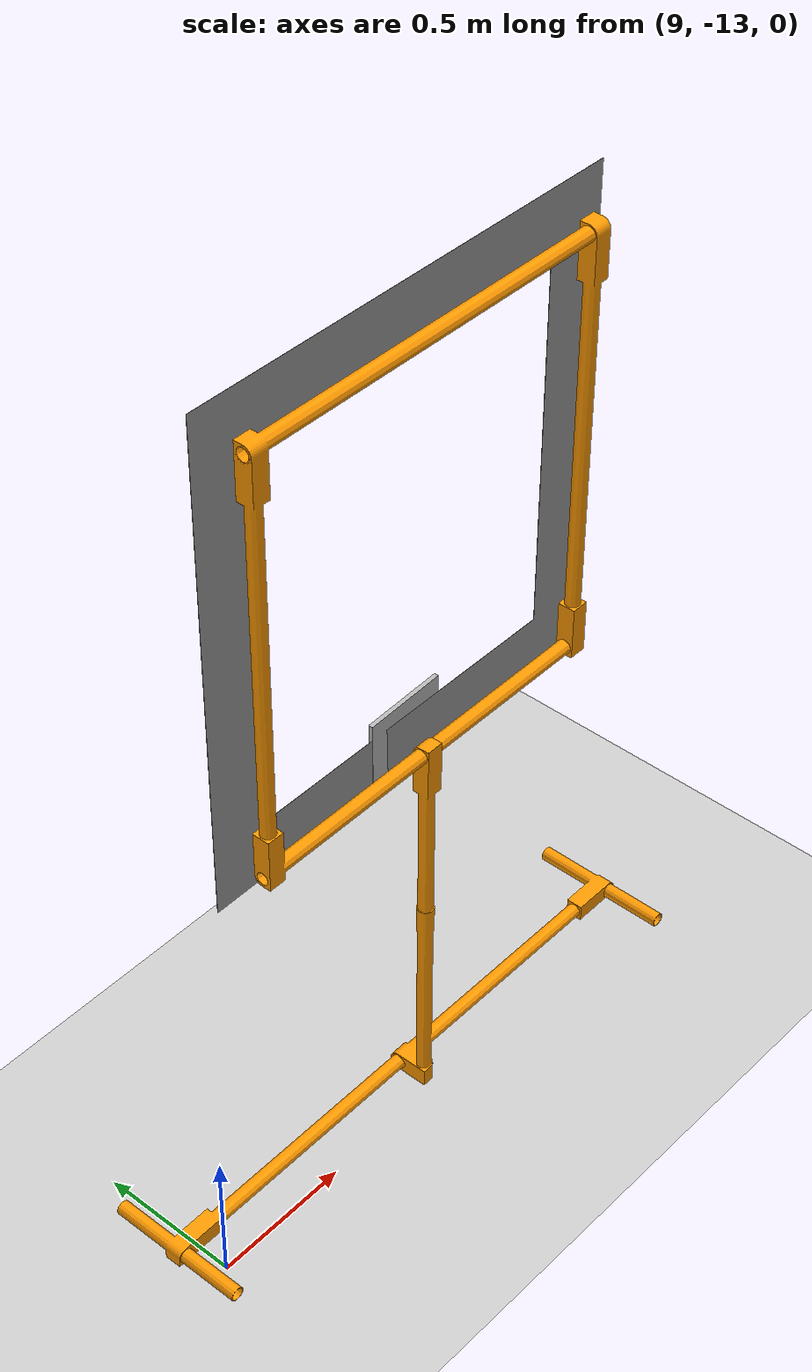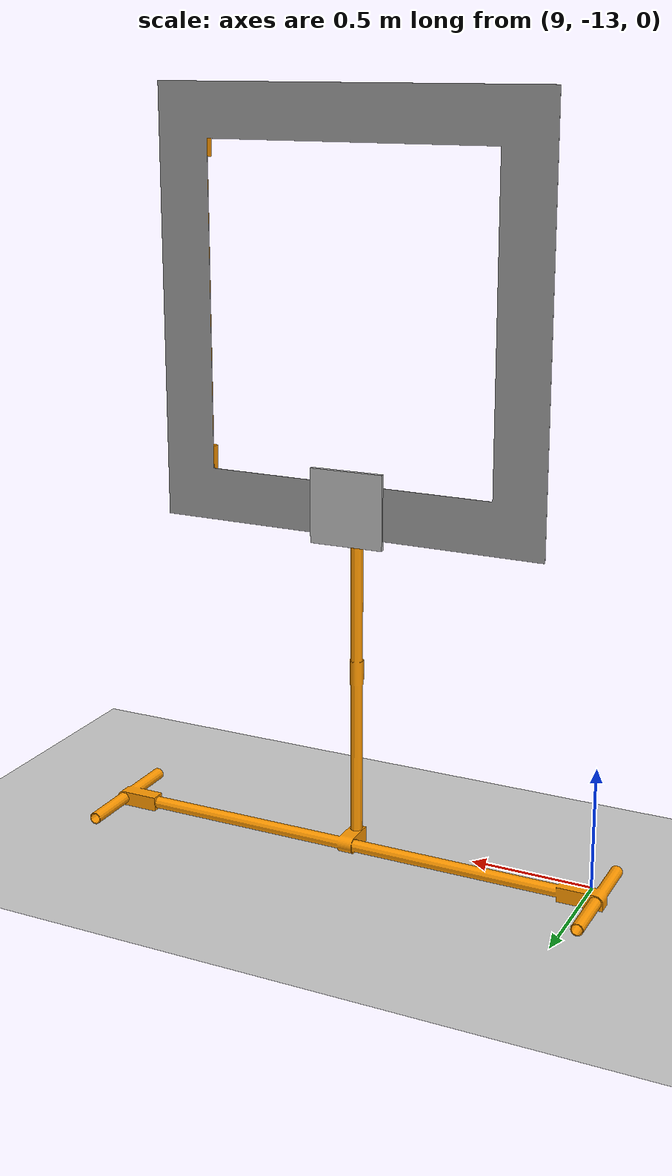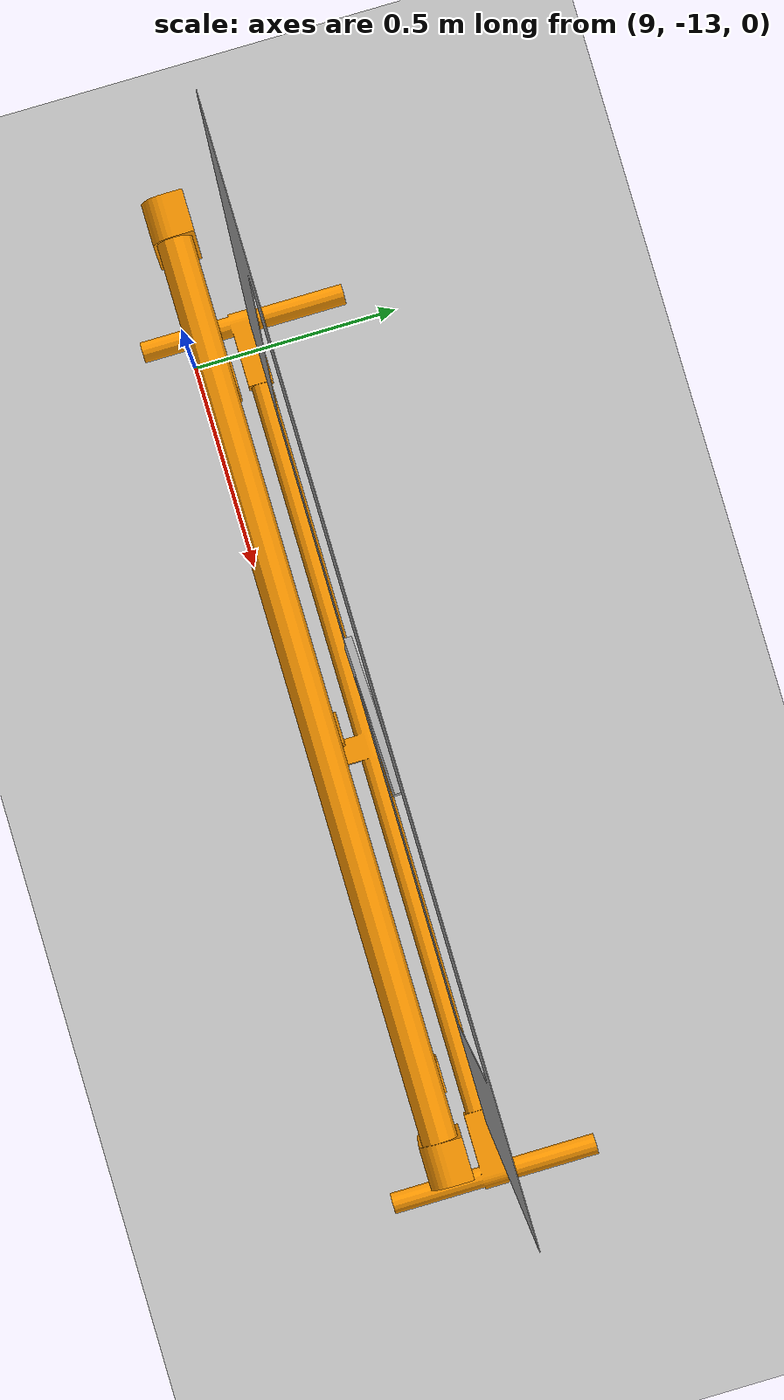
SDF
<sdf version="1.7">
 <world name="default">
  <model name="ground_plane">
   <static>1</static>
   <link name="link">
    <collision name="collision">
     <geometry><plane><normal>0 0 1</normal><size>100 100</size></plane></geometry>
     <surface>
      <contact><collide_bitmask>65535</collide_bitmask></contact>
      <friction><ode><mu>100</mu><mu2>50</mu2></ode></friction>
     </surface>
    </collision>
    <visual name="visual">
     <cast_shadows>0</cast_shadows>
     <geometry><plane><normal>0 0 1</normal><size>100 100</size></plane></geometry>
     <material>
      <script><uri>file://media/materials/scripts/gazebo.material</uri><name>Gazebo/Grey</name></script>
     </material>
    </visual>
   </link>
  </model>
  <model name="Aruco_gate_2">
   <link name="aruco">
    <pose>0.135 0 1.45017 0 -0 1.6</pose>
    <collision name="collision"><geometry><box><size>0.3 0.015 0.3</size></box></geometry></collision>
    <visual name="visual">
     <pose>0 0 0 0 1.57 0</pose>
     <geometry><box><size>0.3 0.015 0.3</size></box></geometry>
     <material>
      <script>
       <uri>model://aruco/materials/scripts</uri>
       <uri>model://aruco/materials/textures</uri>
       <name>aruco_2/Diffuse</name>
      </script>
     </material>
    </visual>
   </link>
   <link name="link_0">
    <pose>-0.126667 1.11221 0.000173 1.57 -0 0</pose>
    <inertial>
     <mass>1</mass>
     <inertia>
      <ixx>0.166667</ixx>
      <ixy>0</ixy>
      <ixz>0</ixz>
      <iyy>0.166667</iyy>
      <iyz>0</iyz>
      <izz>0.166667</izz>
     </inertia>
    </inertial>
    <visual name="visual">
     <geometry><mesh><uri>model://aruco_gate_1/meshes/base.stl</uri><scale>1 1 1</scale></mesh></geometry>
     <material>
      <lighting>1</lighting>
      <script><uri>file://media/materials/scripts/gazebo.material</uri><name>Gazebo/Grey</name></script>
      <ambient>1 0.6 0 1</ambient>
      <diffuse>1 0.6 0 1</diffuse>
      <specular>0.01 0.01 0.01 1</specular>
      <emissive>0 0 0 1</emissive>
      <shader type="vertex"><normal_map>__default__</normal_map></shader>
     </material>
    </visual>
    <collision name="collision">
     <geometry><mesh><uri>model://aruco_gate_1/meshes/base.stl</uri></mesh></geometry>
     <surface>
      <friction>
       <ode><mu>1</mu><mu2>1</mu2><fdir1>0 0 0</fdir1><slip1>0</slip1><slip2>0</slip2></ode>
       <torsional>
        <coefficient>1</coefficient>
        <patch_radius>0</patch_radius>
        <surface_radius>0</surface_radius>
        <use_patch_radius>1</use_patch_radius>
        <ode><slip>0</slip></ode>
       </torsional>
      </friction>
      <bounce><restitution_coefficient>0</restitution_coefficient><threshold>1e+06</threshold></bounce>
      <contact>
       <collide_without_contact>0</collide_without_contact>
       <collide_without_contact_bitmask>1</collide_without_contact_bitmask>
       <collide_bitmask>1</collide_bitmask>
       <ode>
        <soft_cfm>0</soft_cfm>
        <soft_erp>0.2</soft_erp>
        <kp>1e+13</kp>
        <kd>1</kd>
        <max_vel>0.01</max_vel>
        <min_depth>0</min_depth>
       </ode>
       <bullet>
        <split_impulse>1</split_impulse>
        <split_impulse_penetration_threshold>-0.01</split_impulse_penetration_threshold>
        <soft_cfm>0</soft_cfm>
        <soft_erp>0.2</soft_erp>
        <kp>1e+13</kp>
        <kd>1</kd>
       </bullet>
      </contact>
     </surface>
    </collision>
   </link>
   <link name="link_1">
    <pose>0.003333 -0.7 1.40017 0 -0 0</pose>
    <inertial>
     <mass>1</mass>
     <inertia>
      <ixx>0.166667</ixx>
      <ixy>0</ixy>
      <ixz>0</ixz>
      <iyy>0.166667</iyy>
      <iyz>0</iyz>
      <izz>0.166667</izz>
     </inertia>
    </inertial>
    <visual name="visual">
     <geometry><mesh><uri>model://aruco_gate_1/meshes/hoop.stl</uri><scale>1 1 1</scale></mesh></geometry>
     <material>
      <lighting>1</lighting>
      <script><uri>file://media/materials/scripts/gazebo.material</uri><name>Gazebo/Grey</name></script>
      <ambient>1 0.6 0 1</ambient>
      <diffuse>1 0.6 0 1</diffuse>
      <specular>0.01 0.01 0.01 1</specular>
      <emissive>0 0 0 1</emissive>
      <shader type="vertex"><normal_map>__default__</normal_map></shader>
     </material>
    </visual>
    <collision name="collision">
     <geometry><mesh><uri>model://aruco_gate_1/meshes/hoop.stl</uri></mesh></geometry>
     <surface>
      <friction>
       <ode><mu>1</mu><mu2>1</mu2><fdir1>0 0 0</fdir1><slip1>0</slip1><slip2>0</slip2></ode>
       <torsional>
        <coefficient>1</coefficient>
        <patch_radius>0</patch_radius>
        <surface_radius>0</surface_radius>
        <use_patch_radius>1</use_patch_radius>
        <ode><slip>0</slip></ode>
       </torsional>
      </friction>
      <bounce><restitution_coefficient>0</restitution_coefficient><threshold>1e+06</threshold></bounce>
      <contact>
       <collide_without_contact>0</collide_without_contact>
       <collide_without_contact_bitmask>1</collide_without_contact_bitmask>
       <collide_bitmask>1</collide_bitmask>
       <ode>
        <soft_cfm>0</soft_cfm>
        <soft_erp>0.2</soft_erp>
        <kp>1e+13</kp>
        <kd>1</kd>
        <max_vel>0.01</max_vel>
        <min_depth>0</min_depth>
       </ode>
       <bullet>
        <split_impulse>1</split_impulse>
        <split_impulse_penetration_threshold>-0.01</split_impulse_penetration_threshold>
        <soft_cfm>0</soft_cfm>
        <soft_erp>0.2</soft_erp>
        <kp>1e+13</kp>
        <kd>1</kd>
       </bullet>
      </contact>
     </surface>
    </collision>
   </link>
   <link name="link_2">
    <pose>0.123333 -0.797794 3.62017 0 1.57 0</pose>
    <inertial>
     <mass>1</mass>
     <inertia>
      <ixx>0.166667</ixx>
      <ixy>0</ixy>
      <ixz>0</ixz>
      <iyy>0.166667</iyy>
      <iyz>0</iyz>
      <izz>0.166667</izz>
     </inertia>
    </inertial>
    <visual name="visual">
     <geometry><mesh><uri>model://aruco_gate_1/meshes/background.stl</uri><scale>1 1 1</scale></mesh></geometry>
     <material>
      <lighting>1</lighting>
      <script><uri>file://media/materials/scripts/gazebo.material</uri><name>Gazebo/Grey</name></script>
      <ambient>0.9 0.9 0.9 1</ambient>
      <diffuse>0.9 0.9 0.9 1</diffuse>
      <specular>0.01 0.01 0.01 1</specular>
      <emissive>0 0 0 1</emissive>
      <shader type="vertex"><normal_map>__default__</normal_map></shader>
     </material>
    </visual>
    <collision name="collision">
     <geometry><mesh><uri>model://aruco_gate_1/meshes/background.stl</uri></mesh></geometry>
     <surface>
      <friction>
       <ode><mu>1</mu><mu2>1</mu2><fdir1>0 0 0</fdir1><slip1>0</slip1><slip2>0</slip2></ode>
       <torsional>
        <coefficient>1</coefficient>
        <patch_radius>0</patch_radius>
        <surface_radius>0</surface_radius>
        <use_patch_radius>1</use_patch_radius>
        <ode><slip>0</slip></ode>
       </torsional>
      </friction>
      <bounce><restitution_coefficient>0</restitution_coefficient><threshold>1e+06</threshold></bounce>
      <contact>
       <collide_without_contact>0</collide_without_contact>
       <collide_without_contact_bitmask>1</collide_without_contact_bitmask>
       <collide_bitmask>1</collide_bitmask>
       <ode>
        <soft_cfm>0</soft_cfm>
        <soft_erp>0.2</soft_erp>
        <kp>1e+13</kp>
        <kd>1</kd>
        <max_vel>0.01</max_vel>
        <min_depth>0</min_depth>
       </ode>
       <bullet>
        <split_impulse>1</split_impulse>
        <split_impulse_penetration_threshold>-0.01</split_impulse_penetration_threshold>
        <soft_cfm>0</soft_cfm>
        <soft_erp>0.2</soft_erp>
        <kp>1e+13</kp>
        <kd>1</kd>
       </bullet>
      </contact>
     </surface>
    </collision>
   </link>
   <static>1</static>
   <pose>9.99043 -12.9843 0 0 -0 1.57197</pose>
  </model>
 </world>
</sdf>
